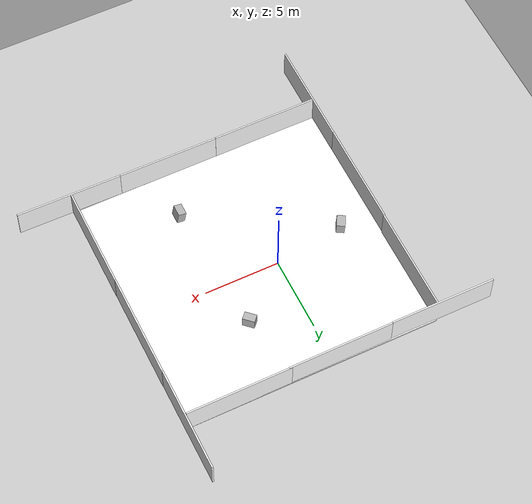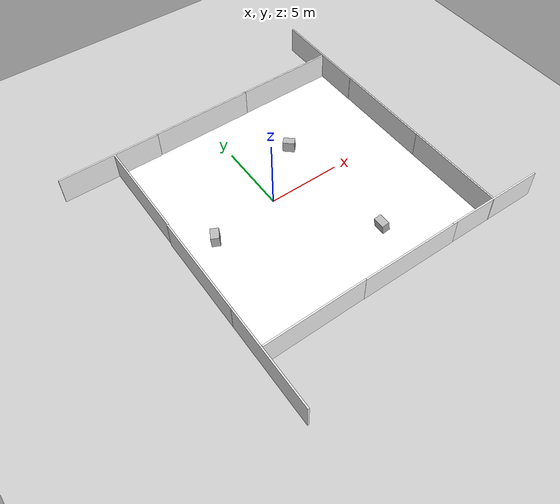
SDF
<sdf version='1.10'>
  <world name='empty'>
    <physics name='1ms' type='ignored'>
      <max_step_size>0.001</max_step_size>
      <real_time_factor>1</real_time_factor>
      <real_time_update_rate>1000</real_time_update_rate>
    </physics>
    <plugin name='gz::sim::systems::Physics' filename='gz-sim-physics-system'/>
    <plugin name='gz::sim::systems::UserCommands' filename='gz-sim-user-commands-system'/>
    <plugin name='gz::sim::systems::SceneBroadcaster' filename='gz-sim-scene-broadcaster-system'/>
    <plugin name='gz::sim::systems::Contact' filename='gz-sim-contact-system'/>
    <gravity>0 0 -9.8000000000000007</gravity>
    <magnetic_field>5.5644999999999998e-06 2.2875799999999999e-05 -4.2388400000000002e-05</magnetic_field>
    <atmosphere type='adiabatic'/>
    <plugin
      filename="gz-sim-sensors-system"
      name="gz::sim::systems::Sensors">
      <render_engine>ogre2</render_engine>
    </plugin>
    <scene>
      <ambient>0.400000006 0.400000006 0.400000006 1</ambient>
      <background>0.699999988 0.699999988 0.699999988 1</background>
      <shadows>true</shadows>
    </scene>
    <model name='ground_plane'>
      <static>true</static>
      <link name='link'>
        <collision name='collision'>
          <geometry>
            <plane>
              <normal>0 0 1</normal>
              <size>100 100</size>
            </plane>
          </geometry>
          <surface>
            <friction>
              <ode/>
            </friction>
            <bounce/>
            <contact/>
          </surface>
        </collision>
        <visual name='visual'>
          <geometry>
            <plane>
              <normal>0 0 1</normal>
              <size>100 100</size>
            </plane>
          </geometry>
          <material>
            <ambient>0.800000012 0.800000012 0.800000012 1</ambient>
            <diffuse>0.800000012 0.800000012 0.800000012 1</diffuse>
            <specular>0.800000012 0.800000012 0.800000012 1</specular>
          </material>
        </visual>
        <pose>0 0 0 0 0 0</pose>
        <inertial>
          <pose>0 0 0 0 0 0</pose>
          <mass>1</mass>
          <inertia>
            <ixx>1</ixx>
            <ixy>0</ixy>
            <ixz>0</ixz>
            <iyy>1</iyy>
            <iyz>0</iyz>
            <izz>1</izz>
          </inertia>
        </inertial>
        <enable_wind>false</enable_wind>
      </link>
      <pose>0 0 0 0 0 0</pose>
      <self_collide>false</self_collide>
    </model>
    <model name='floor'>
      <link name='link'>
        <visual name='visual'>
          <geometry>
            <box>
              <size>17 17 0.10000000000000001</size>
            </box>
          </geometry>
          <material>
            <pbr>
              <metal>
                <albedo_map>model://floor/material/textures/3840x2160-light-sky-blue-solid-color-background.jpg</albedo_map>
              </metal>
            </pbr>
            <diffuse>1 1 1 1</diffuse>
          </material>
        </visual>
        <collision name='collision'>
          <geometry>
            <box>
              <size>17 17 0.10000000000000001</size>
            </box>
          </geometry>
          <surface>
            <friction>
              <ode/>
            </friction>
            <bounce/>
            <contact/>
          </surface>
        </collision>
        <pose>0 0 0 0 0 0</pose>
        <inertial>
          <pose>0 0 0 0 0 0</pose>
          <mass>1</mass>
          <inertia>
            <ixx>1</ixx>
            <ixy>0</ixy>
            <ixz>0</ixz>
            <iyy>1</iyy>
            <iyz>0</iyz>
            <izz>1</izz>
          </inertia>
        </inertial>
        <enable_wind>false</enable_wind>
      </link>
      <static>true</static>
      <allow_auto_disable>true</allow_auto_disable>
      <pose>1.5129901170730591 -0.53078800439834595 0.022834900766611099 0 0 0</pose>
      <self_collide>false</self_collide>
    </model>
    <model name='room_wall_2x5m'>
      <link name='link'>
        <visual name='visual'>
          <geometry>
            <box>
              <size>0.10000000000000001 7 2</size>
            </box>
          </geometry>
          <material>
            <pbr>
              <metal>
                <albedo_map>model://room_wall_2x5m/material/textures/wall_texture_1404x562.jpg</albedo_map>
              </metal>
            </pbr>
            <diffuse>1 1 1 1</diffuse>
          </material>
        </visual>
        <collision name='collision'>
          <geometry>
            <box>
              <size>0.10000000000000001 7 2</size>
            </box>
          </geometry>
          <surface>
            <friction>
              <ode/>
            </friction>
            <bounce/>
            <contact/>
          </surface>
        </collision>
        <pose>0 0 0 0 0 0</pose>
        <inertial>
          <pose>0 0 0 0 0 0</pose>
          <mass>1</mass>
          <inertia>
            <ixx>1</ixx>
            <ixy>0</ixy>
            <ixz>0</ixz>
            <iyy>1</iyy>
            <iyz>0</iyz>
            <izz>1</izz>
          </inertia>
        </inertial>
        <enable_wind>false</enable_wind>
      </link>
      <static>true</static>
      <allow_auto_disable>true</allow_auto_disable>
      <pose>10.071800231933594 -5.703239917755127 1.0311455726623535 0 0 0</pose>
      <self_collide>false</self_collide>
    </model>
    <model name='room_wall_2x5m_0'>
      <link name='link'>
        <visual name='visual'>
          <geometry>
            <box>
              <size>0.10000000000000001 7 2</size>
            </box>
          </geometry>
          <material>
            <pbr>
              <metal>
                <albedo_map>model://room_wall_2x5m/material/textures/wall_texture_1404x562.jpg</albedo_map>
              </metal>
            </pbr>
            <diffuse>1 1 1 1</diffuse>
          </material>
        </visual>
        <collision name='collision'>
          <geometry>
            <box>
              <size>0.10000000000000001 7 2</size>
            </box>
          </geometry>
          <surface>
            <friction>
              <ode/>
            </friction>
            <bounce/>
            <contact/>
          </surface>
        </collision>
        <pose>0 0 0 0 0 0</pose>
        <inertial>
          <pose>0 0 0 0 0 0</pose>
          <mass>1</mass>
          <inertia>
            <ixx>1</ixx>
            <ixy>0</ixy>
            <ixz>0</ixz>
            <iyy>1</iyy>
            <iyz>0</iyz>
            <izz>1</izz>
          </inertia>
        </inertial>
        <enable_wind>false</enable_wind>
      </link>
      <static>true</static>
      <allow_auto_disable>true</allow_auto_disable>
      <pose>10.061400413513184 1.2780100107192993 1.0350613594055176 0 0 0</pose>
      <self_collide>false</self_collide>
    </model>
    <model name='room_wall_2x5m_1'>
      <link name='link'>
        <visual name='visual'>
          <geometry>
            <box>
              <size>0.10000000000000001 7 2</size>
            </box>
          </geometry>
          <material>
            <pbr>
              <metal>
                <albedo_map>model://room_wall_2x5m/material/textures/wall_texture_1404x562.jpg</albedo_map>
              </metal>
            </pbr>
            <diffuse>1 1 1 1</diffuse>
          </material>
        </visual>
        <collision name='collision'>
          <geometry>
            <box>
              <size>0.10000000000000001 7 2</size>
            </box>
          </geometry>
          <surface>
            <friction>
              <ode/>
            </friction>
            <bounce/>
            <contact/>
          </surface>
        </collision>
        <pose>0 0 0 0 0 0</pose>
        <inertial>
          <pose>0 0 0 0 0 0</pose>
          <mass>1</mass>
          <inertia>
            <ixx>1</ixx>
            <ixy>0</ixy>
            <ixz>0</ixz>
            <iyy>1</iyy>
            <iyz>0</iyz>
            <izz>1</izz>
          </inertia>
        </inertial>
        <enable_wind>false</enable_wind>
      </link>
      <static>true</static>
      <allow_auto_disable>true</allow_auto_disable>
      <pose>10.045441627502441 8.2652196884155273 1.0323599576950073 0 0 0</pose>
      <self_collide>false</self_collide>
    </model>
    <model name='room_wall_2x5m_2'>
      <link name='link'>
        <visual name='visual'>
          <geometry>
            <box>
              <size>0.10000000000000001 7 2</size>
            </box>
          </geometry>
          <material>
            <pbr>
              <metal>
                <albedo_map>model://room_wall_2x5m/material/textures/wall_texture_1404x562.jpg</albedo_map>
              </metal>
            </pbr>
            <diffuse>1 1 1 1</diffuse>
          </material>
        </visual>
        <collision name='collision'>
          <geometry>
            <box>
              <size>0.10000000000000001 7 2</size>
            </box>
          </geometry>
          <surface>
            <friction>
              <ode/>
            </friction>
            <bounce/>
            <contact/>
          </surface>
        </collision>
        <pose>0 0 0 0 0 0</pose>
        <inertial>
          <pose>0 0 0 0 0 0</pose>
          <mass>1</mass>
          <inertia>
            <ixx>1</ixx>
            <ixy>0</ixy>
            <ixz>0</ixz>
            <iyy>1</iyy>
            <iyz>0</iyz>
            <izz>1</izz>
          </inertia>
        </inertial>
        <enable_wind>false</enable_wind>
      </link>
      <static>true</static>
      <allow_auto_disable>true</allow_auto_disable>
      <pose>6.4694700241088867 7.9244799613952637 1.0202511548995972 0 0 -1.5673400306189773</pose>
      <self_collide>false</self_collide>
    </model>
    <model name='room_wall_2x5m_3'>
      <link name='link'>
        <visual name='visual'>
          <geometry>
            <box>
              <size>0.10000000000000001 7 2</size>
            </box>
          </geometry>
          <material>
            <pbr>
              <metal>
                <albedo_map>model://room_wall_2x5m/material/textures/wall_texture_1404x562.jpg</albedo_map>
              </metal>
            </pbr>
            <diffuse>1 1 1 1</diffuse>
          </material>
        </visual>
        <collision name='collision'>
          <geometry>
            <box>
              <size>0.10000000000000001 7 2</size>
            </box>
          </geometry>
          <surface>
            <friction>
              <ode/>
            </friction>
            <bounce/>
            <contact/>
          </surface>
        </collision>
        <pose>0 0 0 0 0 0</pose>
        <inertial>
          <pose>0 0 0 0 0 0</pose>
          <mass>1</mass>
          <inertia>
            <ixx>1</ixx>
            <ixy>0</ixy>
            <ixz>0</ixz>
            <iyy>1</iyy>
            <iyz>0</iyz>
            <izz>1</izz>
          </inertia>
        </inertial>
        <enable_wind>false</enable_wind>
      </link>
      <static>true</static>
      <allow_auto_disable>true</allow_auto_disable>
      <pose>-0.34431499242782593 7.871769905090332 1.0215500593185425 0 0 -1.5669473900054409</pose>
      <self_collide>false</self_collide>
    </model>
    <model name='room_wall_2x5m_4'>
      <link name='link'>
        <visual name='visual'>
          <geometry>
            <box>
              <size>0.10000000000000001 7 2</size>
            </box>
          </geometry>
          <material>
            <pbr>
              <metal>
                <albedo_map>model://room_wall_2x5m/material/textures/wall_texture_1404x562.jpg</albedo_map>
              </metal>
            </pbr>
            <diffuse>1 1 1 1</diffuse>
          </material>
        </visual>
        <collision name='collision'>
          <geometry>
            <box>
              <size>0.10000000000000001 7 2</size>
            </box>
          </geometry>
          <surface>
            <friction>
              <ode/>
            </friction>
            <bounce/>
            <contact/>
          </surface>
        </collision>
        <pose>0 0 0 0 0 0</pose>
        <inertial>
          <pose>0 0 0 0 0 0</pose>
          <mass>1</mass>
          <inertia>
            <ixx>1</ixx>
            <ixy>0</ixy>
            <ixz>0</ixz>
            <iyy>1</iyy>
            <iyz>0</iyz>
            <izz>1</izz>
          </inertia>
        </inertial>
        <enable_wind>false</enable_wind>
      </link>
      <static>true</static>
      <allow_auto_disable>true</allow_auto_disable>
      <pose>-7.3303799629211426 7.8381280899047852 1.0210000276565552 0 0 -1.5740400339994871</pose>
      <self_collide>false</self_collide>
    </model>
    <model name='room_wall_2x5m_5'>
      <link name='link'>
        <visual name='visual'>
          <geometry>
            <box>
              <size>0.10000000000000001 7 2</size>
            </box>
          </geometry>
          <material>
            <pbr>
              <metal>
                <albedo_map>model://room_wall_2x5m/material/textures/wall_texture_1404x562.jpg</albedo_map>
              </metal>
            </pbr>
            <diffuse>1 1 1 1</diffuse>
          </material>
        </visual>
        <collision name='collision'>
          <geometry>
            <box>
              <size>0.10000000000000001 7 2</size>
            </box>
          </geometry>
          <surface>
            <friction>
              <ode/>
            </friction>
            <bounce/>
            <contact/>
          </surface>
        </collision>
        <pose>0 0 0 0 0 0</pose>
        <inertial>
          <pose>0 0 0 0 0 0</pose>
          <mass>1</mass>
          <inertia>
            <ixx>1</ixx>
            <ixy>0</ixy>
            <ixz>0</ixz>
            <iyy>1</iyy>
            <iyz>0</iyz>
            <izz>1</izz>
          </inertia>
        </inertial>
        <enable_wind>false</enable_wind>
      </link>
      <static>true</static>
      <allow_auto_disable>true</allow_auto_disable>
      <pose>-6.9762101173400879 4.3062400817871094 1.0307589769363403 0 0 0</pose>
      <self_collide>false</self_collide>
    </model>
    <model name='room_wall_2x5m_6'>
      <link name='link'>
        <visual name='visual'>
          <geometry>
            <box>
              <size>0.10000000000000001 7 2</size>
            </box>
          </geometry>
          <material>
            <pbr>
              <metal>
                <albedo_map>model://room_wall_2x5m/material/textures/wall_texture_1404x562.jpg</albedo_map>
              </metal>
            </pbr>
            <diffuse>1 1 1 1</diffuse>
          </material>
        </visual>
        <collision name='collision'>
          <geometry>
            <box>
              <size>0.10000000000000001 7 2</size>
            </box>
          </geometry>
          <surface>
            <friction>
              <ode/>
            </friction>
            <bounce/>
            <contact/>
          </surface>
        </collision>
        <pose>0 0 0 0 0 0</pose>
        <inertial>
          <pose>0 0 0 0 0 0</pose>
          <mass>1</mass>
          <inertia>
            <ixx>1</ixx>
            <ixy>0</ixy>
            <ixz>0</ixz>
            <iyy>1</iyy>
            <iyz>0</iyz>
            <izz>1</izz>
          </inertia>
        </inertial>
        <enable_wind>false</enable_wind>
      </link>
      <static>true</static>
      <allow_auto_disable>true</allow_auto_disable>
      <pose>-7.0153498649597168 -2.696688175201416 1.0181200504302979 0 0 0</pose>
      <self_collide>false</self_collide>
    </model>
    <model name='room_wall_2x5m_7'>
      <link name='link'>
        <visual name='visual'>
          <geometry>
            <box>
              <size>0.10000000000000001 7 2</size>
            </box>
          </geometry>
          <material>
            <pbr>
              <metal>
                <albedo_map>model://room_wall_2x5m/material/textures/wall_texture_1404x562.jpg</albedo_map>
              </metal>
            </pbr>
            <diffuse>1 1 1 1</diffuse>
          </material>
        </visual>
        <collision name='collision'>
          <geometry>
            <box>
              <size>0.10000000000000001 7 2</size>
            </box>
          </geometry>
          <surface>
            <friction>
              <ode/>
            </friction>
            <bounce/>
            <contact/>
          </surface>
        </collision>
        <pose>0 0 0 0 0 0</pose>
        <inertial>
          <pose>0 0 0 0 0 0</pose>
          <mass>1</mass>
          <inertia>
            <ixx>1</ixx>
            <ixy>0</ixy>
            <ixz>0</ixz>
            <iyy>1</iyy>
            <iyz>0</iyz>
            <izz>1</izz>
          </inertia>
        </inertial>
        <enable_wind>false</enable_wind>
      </link>
      <static>true</static>
      <allow_auto_disable>true</allow_auto_disable>
      <pose>-7.010897159576416 -9.6965503692626953 1.0090199708938599 0 0 0</pose>
      <self_collide>false</self_collide>
    </model>
    <model name='room_wall_2x5m_8'>
      <link name='link'>
        <visual name='visual'>
          <geometry>
            <box>
              <size>0.10000000000000001 7 2</size>
            </box>
          </geometry>
          <material>
            <pbr>
              <metal>
                <albedo_map>model://room_wall_2x5m/material/textures/wall_texture_1404x562.jpg</albedo_map>
              </metal>
            </pbr>
            <diffuse>1 1 1 1</diffuse>
          </material>
        </visual>
        <collision name='collision'>
          <geometry>
            <box>
              <size>0.10000000000000001 7 2</size>
            </box>
          </geometry>
          <surface>
            <friction>
              <ode/>
            </friction>
            <bounce/>
            <contact/>
          </surface>
        </collision>
        <pose>0 0 0 0 0 0</pose>
        <inertial>
          <pose>0 0 0 0 0 0</pose>
          <mass>1</mass>
          <inertia>
            <ixx>1</ixx>
            <ixy>0</ixy>
            <ixz>0</ixz>
            <iyy>1</iyy>
            <iyz>0</iyz>
            <izz>1</izz>
          </inertia>
        </inertial>
        <enable_wind>false</enable_wind>
      </link>
      <static>true</static>
      <allow_auto_disable>true</allow_auto_disable>
      <pose>-3.4551799297332764 -9.0801601409912109 1.0526123046875 0 0 -1.5697400424240924</pose>
      <self_collide>false</self_collide>
    </model>
    <model name='room_wall_2x5m_9'>
      <link name='link'>
        <visual name='visual'>
          <geometry>
            <box>
              <size>0.10000000000000001 7 2</size>
            </box>
          </geometry>
          <material>
            <pbr>
              <metal>
                <albedo_map>model://room_wall_2x5m/material/textures/wall_texture_1404x562.jpg</albedo_map>
              </metal>
            </pbr>
            <diffuse>1 1 1 1</diffuse>
          </material>
        </visual>
        <collision name='collision'>
          <geometry>
            <box>
              <size>0.10000000000000001 7 2</size>
            </box>
          </geometry>
          <surface>
            <friction>
              <ode/>
            </friction>
            <bounce/>
            <contact/>
          </surface>
        </collision>
        <pose>0 0 0 0 0 0</pose>
        <inertial>
          <pose>0 0 0 0 0 0</pose>
          <mass>1</mass>
          <inertia>
            <ixx>1</ixx>
            <ixy>0</ixy>
            <ixz>0</ixz>
            <iyy>1</iyy>
            <iyz>0</iyz>
            <izz>1</izz>
          </inertia>
        </inertial>
        <enable_wind>false</enable_wind>
      </link>
      <static>true</static>
      <allow_auto_disable>true</allow_auto_disable>
      <pose>3.524169921875 -9.1032400131225586 1.0252231359481812 0 0 -1.5772699254742881</pose>
      <self_collide>false</self_collide>
    </model>
    <model name='room_wall_2x5m_10'>
      <link name='link'>
        <visual name='visual'>
          <geometry>
            <box>
              <size>0.10000000000000001 7 2</size>
            </box>
          </geometry>
          <material>
            <pbr>
              <metal>
                <albedo_map>model://room_wall_2x5m/material/textures/wall_texture_1404x562.jpg</albedo_map>
              </metal>
            </pbr>
            <diffuse>1 1 1 1</diffuse>
          </material>
        </visual>
        <collision name='collision'>
          <geometry>
            <box>
              <size>0.10000000000000001 7 2</size>
            </box>
          </geometry>
          <surface>
            <friction>
              <ode/>
            </friction>
            <bounce/>
            <contact/>
          </surface>
        </collision>
        <pose>0 0 0 0 0 0</pose>
        <inertial>
          <pose>0 0 0 0 0 0</pose>
          <mass>1</mass>
          <inertia>
            <ixx>1</ixx>
            <ixy>0</ixy>
            <ixz>0</ixz>
            <iyy>1</iyy>
            <iyz>0</iyz>
            <izz>1</izz>
          </inertia>
        </inertial>
        <enable_wind>false</enable_wind>
      </link>
      <static>true</static>
      <allow_auto_disable>true</allow_auto_disable>
      <pose>10.216792106628418 -9.1550178527832031 1.0341199636459351 0 0 -1.5826399968170719</pose>
      <self_collide>false</self_collide>
    </model>
    <model name='Aruco_1'>
      <link name='link_0'>
        <visual name='visual'>
          <geometry>
            <mesh>
              <uri>model://Aruco_1/meshes/aruco_1.dae</uri>
            </mesh>
          </geometry>
        </visual>
        <collision name='collision_0'>
          <geometry>
            <mesh>
              <uri>model://Aruco_1/meshes/aruco_1.dae</uri>
            </mesh>
          </geometry>
        </collision>
        <pose>0 0 0 0 0 0</pose>
        <inertial>
          <pose>0 0 0 0 0 0</pose>
          <mass>1</mass>
          <inertia>
            <ixx>1</ixx>
            <ixy>0</ixy>
            <ixz>0</ixz>
            <iyy>1</iyy>
            <iyz>0</iyz>
            <izz>1</izz>
          </inertia>
        </inertial>
        <enable_wind>false</enable_wind>
      </link>
      <pose>4.1582598686218262 -5.8098301887512207 0.48910599946975702 -0.001971616909151304 0.17410894959124379 3.1302108204316066</pose>
      <static>false</static>
      <self_collide>false</self_collide>
    </model>
    <model name='Aruco_2'>
      <link name='link_0'>
        <visual name='visual'>
          <geometry>
            <mesh>
              <uri>model://Aruco_2/meshes/aruco_2.dae</uri>
            </mesh>
          </geometry>
        </visual>
        <collision name='collision_0'>
          <geometry>
            <mesh>
              <uri>model://Aruco_2/meshes/aruco_2.dae</uri>
            </mesh>
          </geometry>
        </collision>
        <pose>0 0 0 0 0 0</pose>
        <inertial>
          <pose>0 0 0 0 0 0</pose>
          <mass>1</mass>
          <inertia>
            <ixx>1</ixx>
            <ixy>0</ixy>
            <ixz>0</ixz>
            <iyy>1</iyy>
            <iyz>0</iyz>
            <izz>1</izz>
          </inertia>
        </inertial>
        <enable_wind>false</enable_wind>
      </link>
      <pose>-4.7226300239562997 -0.612326979637146 0.5009080171585083 -0.0047299747651759058 -0.0028246098045879983 2.6032570965233077</pose>
      <static>false</static>
      <self_collide>false</self_collide>
    </model>
    <model name='Aruco_3'>
      <link name='link_0'>
        <visual name='visual'>
          <geometry>
            <mesh>
              <uri>model://Aruco_3/meshes/aruco_3.dae</uri>
            </mesh>
          </geometry>
        </visual>
        <collision name='collision_0'>
          <geometry>
            <mesh>
              <uri>model://Aruco_3/meshes/aruco_3.dae</uri>
            </mesh>
          </geometry>
        </collision>
        <pose>0 0 0 0 0 0</pose>
        <inertial>
          <pose>0 0 0 0 0 0</pose>
          <mass>1</mass>
          <inertia>
            <ixx>1</ixx>
            <ixy>0</ixy>
            <ixz>0</ixz>
            <iyy>1</iyy>
            <iyz>0</iyz>
            <izz>1</izz>
          </inertia>
        </inertial>
        <enable_wind>false</enable_wind>
      </link>
      <pose>3.4991800785064697 3.1394200325012211 0.48752099275588989 0 0 0.82728185866439208</pose>
      <static>false</static>
      <self_collide>false</self_collide>
    </model>
    <light name='sun' type='directional'>
      <pose>0 0 10 0 0 0</pose>
      <cast_shadows>true</cast_shadows>
      <intensity>1</intensity>
      <direction>-0.5 0.10000000000000001 -0.90000000000000002</direction>
      <diffuse>0.800000012 0.800000012 0.800000012 1</diffuse>
      <specular>0.200000003 0.200000003 0.200000003 1</specular>
      <attenuation>
        <range>1000</range>
        <linear>0.01</linear>
        <constant>0.90000000000000002</constant>
        <quadratic>0.001</quadratic>
      </attenuation>
      <spot>
        <inner_angle>0</inner_angle>
        <outer_angle>0</outer_angle>
        <falloff>0</falloff>
      </spot>
    </light>
  </world>
</sdf>
